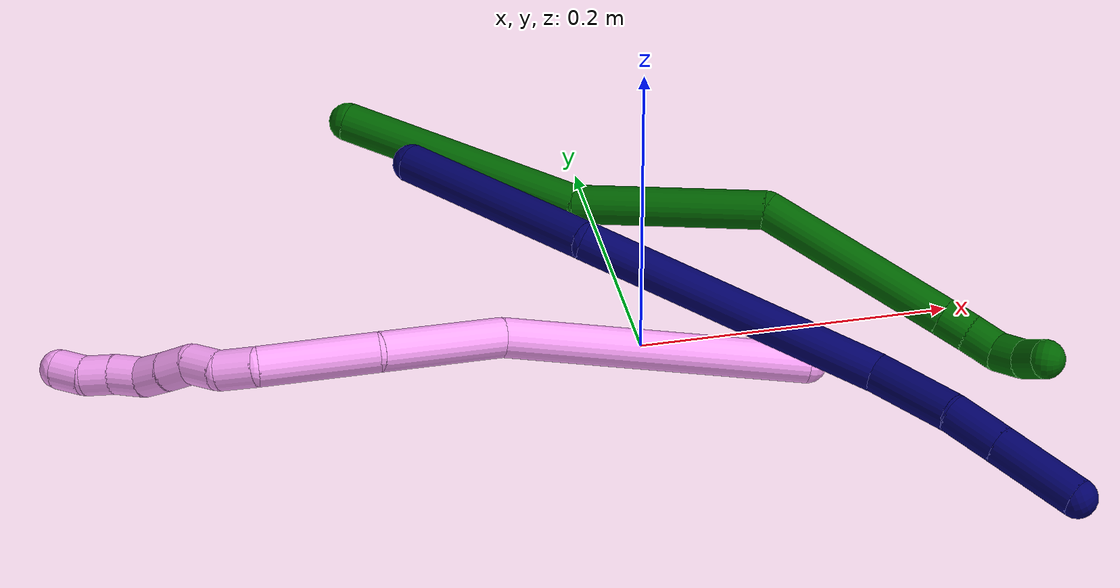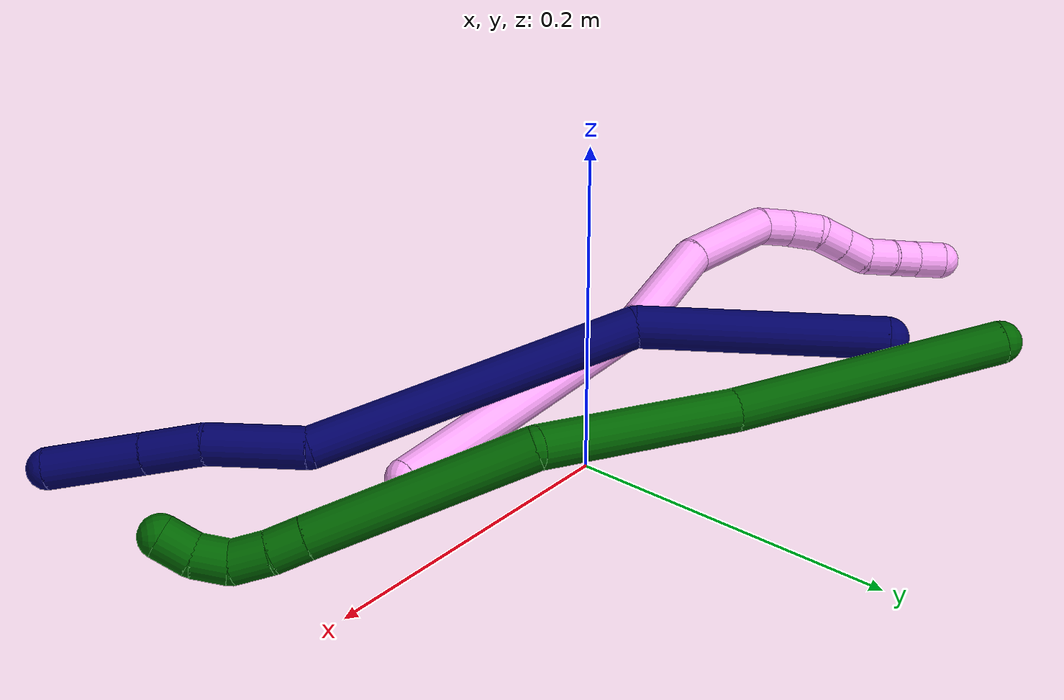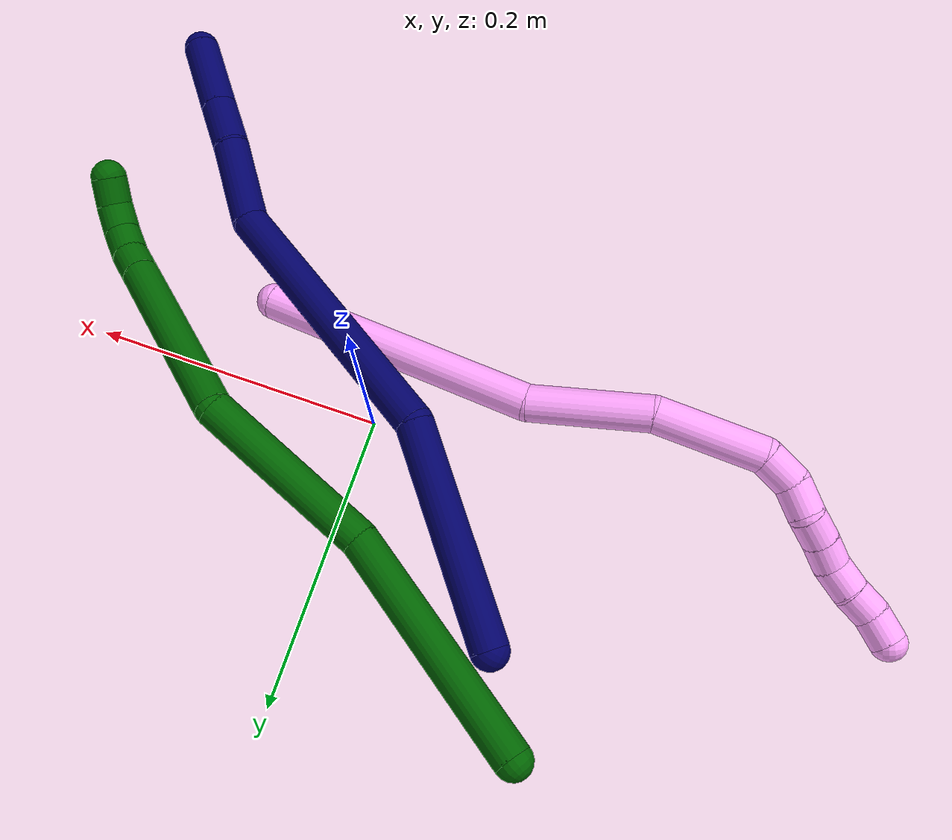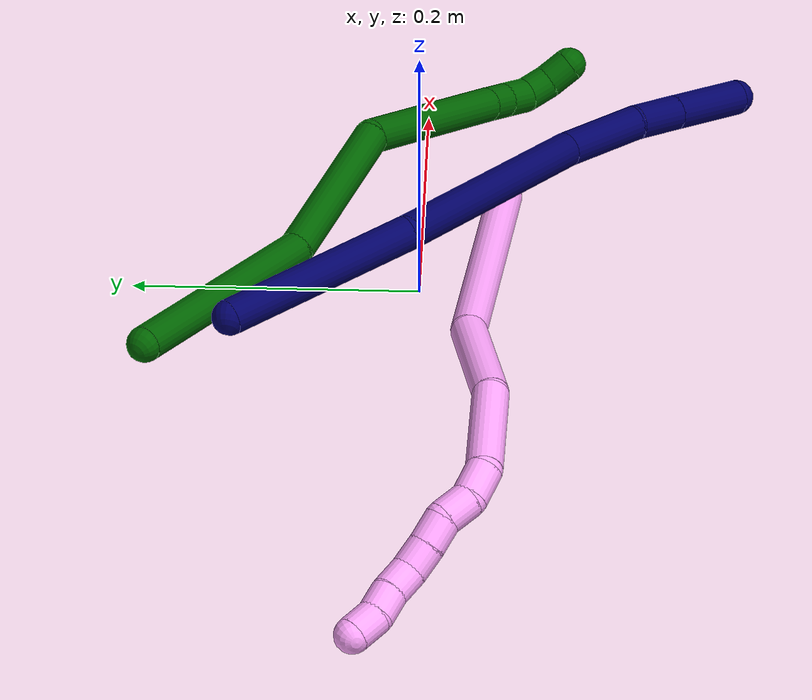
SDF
<sdf version="1.7">
 <world name="default">
  <model name="photoneo_s_sensor">
   <static>1</static>
   <pose>0 0 2 1.57079 1.57079 3.14159</pose>
   <link name="link">
    <inertial><mass>0.1</mass></inertial>
    <sensor name="sensor" type="depth">
     <update_rate>30</update_rate>
     <camera>
      <horizontal_fov>1.22</horizontal_fov>
      <image><width>1920</width><height>1200</height><format>B8G8R8</format></image>
      <clip><near>0.1</near><far>4</far></clip>
      <depth_camera><output>points</output></depth_camera>
     </camera>
     <plugin name="camera_plugin" filename="libgazebo_ros_depth_camera.so">
      <baseline>0.2</baseline>
      <alwaysOn>1</alwaysOn>
      <updateRate>0.0</updateRate>
      <cameraName>camera_ir</cameraName>
      <imageTopicName>/camera/color/image_raw</imageTopicName>
      <cameraInfoTopicName>/camera/color/camera_info</cameraInfoTopicName>
      <depthImageTopicName>/camera/depth/image_raw</depthImageTopicName>
      <depthImageCameraInfoTopicName>/camera/depth/camera_info</depthImageCameraInfoTopicName>
      <pointCloudTopicName>/camera/depth/points</pointCloudTopicName>
      <frameName>fr_optical</frameName>
      <pointCloudCutoff>0.1</pointCloudCutoff>
      <pointCloudCutoffMax>2.0</pointCloudCutoffMax>
      <distortionK1>0</distortionK1>
      <distortionK2>0</distortionK2>
      <distortionK3>0</distortionK3>
      <distortionT1>0</distortionT1>
      <distortionT2>0</distortionT2>
      <CxPrime>0</CxPrime>
      <Cx>0</Cx>
      <Cy>0</Cy>
      <focalLength>0</focalLength>
      <hackBaseline>0</hackBaseline>
     </plugin>
    </sensor>
   </link>
  </model>
  <model name="bin">
   <static>1</static>
   <link name="bottom">
    <collision name="collision-bottom">
     <pose>0 0 -0.01 0 -0 0</pose>
     <geometry><box><size>0.8 0.6 0.02</size></box></geometry>
     <surface>
      <friction><ode><mu>100</mu><mu2>100</mu2></ode></friction>
      <contact><collide_bitmask>65535</collide_bitmask></contact>
     </surface>
    </collision>
   </link>
   <link name="west_wall">
    <collision name="collision-west_wall">
     <pose>-0.41 0 0.1 0 -0 0</pose>
     <geometry><box><size>0.02 0.6 0.2</size></box></geometry>
     <surface>
      <friction><ode><mu>100</mu><mu2>100</mu2></ode></friction>
      <contact><collide_bitmask>65535</collide_bitmask></contact>
     </surface>
    </collision>
   </link>
   <link name="east_wall">
    <collision name="collision-east_wall">
     <pose>0.41 0 0.1 0 -0 0</pose>
     <geometry><box><size>0.02 0.6 0.2</size></box></geometry>
     <surface>
      <friction><ode><mu>100</mu><mu2>100</mu2></ode></friction>
      <contact><collide_bitmask>65535</collide_bitmask></contact>
     </surface>
    </collision>
   </link>
   <link name="south_wall">
    <collision name="collision-south_wall">
     <pose>0 -0.31 0.1 0 -0 0</pose>
     <geometry><box><size>0.8 0.02 0.2</size></box></geometry>
     <surface>
      <friction><ode><mu>100</mu><mu2>100</mu2></ode></friction>
      <contact><collide_bitmask>65535</collide_bitmask></contact>
     </surface>
    </collision>
   </link>
   <link name="north_wall">
    <collision name="collision-north_wall">
     <pose>0 0.31 0.1 0 -0 0</pose>
     <geometry><box><size>0.8 0.02 0.2</size></box></geometry>
     <surface>
      <friction><ode><mu>100</mu><mu2>100</mu2></ode></friction>
      <contact><collide_bitmask>65535</collide_bitmask></contact>
     </surface>
    </collision>
   </link>
  </model>
  <model name="4">
   <static>0</static>
   <link name="4">
    <collision name="collision-cylinder-e_1_1_4">
     <pose>-0.022563 0.03077 0.089066 -0.332634 -0.235016 0.039629</pose>
     <geometry><cylinder><radius>0.0125</radius><length>0.193789</length></cylinder></geometry>
     <surface>
      <friction><ode><mu>1.16</mu><mu2>1.16</mu2><slip1>0</slip1><slip2>0</slip2></ode></friction>
      <contact><ode><kp>1e+06</kp><kd>1</kd><max_vel>0</max_vel><min_depth>0.001</min_depth></ode></contact>
     </surface>
    </collision>
    <visual name="visual-cylinder-e_1_1_4">
     <pose>-0.022563 0.03077 0.089066 -0.332634 -0.235016 0.039629</pose>
     <geometry><cylinder><radius>0.0125</radius><length>0.193789</length></cylinder></geometry>
     <material><ambient>1 0.65098 0.996078 1</ambient></material>
    </visual>
    <collision name="collision-cylinder-e_2_4_5">
     <pose>-0.051186 0.062762 0.218689 -0.030149 -0.148277 0.002239</pose>
     <geometry><cylinder><radius>0.0125</radius><length>0.082052</length></cylinder></geometry>
     <surface>
      <friction><ode><mu>1.16</mu><mu2>1.16</mu2><slip1>0</slip1><slip2>0</slip2></ode></friction>
      <contact><ode><kp>1e+06</kp><kd>1</kd><max_vel>0</max_vel><min_depth>0.001</min_depth></ode></contact>
     </surface>
    </collision>
    <visual name="visual-cylinder-e_2_4_5">
     <pose>-0.051186 0.062762 0.218689 -0.030149 -0.148277 0.002239</pose>
     <geometry><cylinder><radius>0.0125</radius><length>0.082052</length></cylinder></geometry>
     <material><ambient>1 0.65098 0.996078 1</ambient></material>
    </visual>
    <collision name="collision-cylinder-e_3_5_6">
     <pose>-0.071695 0.070557 0.292918 -0.192753 -0.398569 0.039045</pose>
     <geometry><cylinder><radius>0.0125</radius><length>0.074451</length></cylinder></geometry>
     <surface>
      <friction><ode><mu>1.16</mu><mu2>1.16</mu2><slip1>0</slip1><slip2>0</slip2></ode></friction>
      <contact><ode><kp>1e+06</kp><kd>1</kd><max_vel>0</max_vel><min_depth>0.001</min_depth></ode></contact>
     </surface>
    </collision>
    <visual name="visual-cylinder-e_3_5_6">
     <pose>-0.071695 0.070557 0.292918 -0.192753 -0.398569 0.039045</pose>
     <geometry><cylinder><radius>0.0125</radius><length>0.074451</length></cylinder></geometry>
     <material><ambient>1 0.65098 0.996078 1</ambient></material>
    </visual>
    <collision name="collision-cylinder-e_4_6_7">
     <pose>-0.094412 0.081805 0.334607 -0.52804 -0.727923 0.205232</pose>
     <geometry><cylinder><radius>0.0125</radius><length>0.024862</length></cylinder></geometry>
     <surface>
      <friction><ode><mu>1.16</mu><mu2>1.16</mu2><slip1>0</slip1><slip2>0</slip2></ode></friction>
      <contact><ode><kp>1e+06</kp><kd>1</kd><max_vel>0</max_vel><min_depth>0.001</min_depth></ode></contact>
     </surface>
    </collision>
    <visual name="visual-cylinder-e_4_6_7">
     <pose>-0.094412 0.081805 0.334607 -0.52804 -0.727923 0.205232</pose>
     <geometry><cylinder><radius>0.0125</radius><length>0.024862</length></cylinder></geometry>
     <material><ambient>1 0.65098 0.996078 1</ambient></material>
    </visual>
    <collision name="collision-cylinder-e_5_7_8">
     <pose>-0.109801 0.094091 0.346689 -1.08006 -0.689821 0.424266</pose>
     <geometry><cylinder><radius>0.0125</radius><length>0.02237</length></cylinder></geometry>
     <surface>
      <friction><ode><mu>1.16</mu><mu2>1.16</mu2><slip1>0</slip1><slip2>0</slip2></ode></friction>
      <contact><ode><kp>1e+06</kp><kd>1</kd><max_vel>0</max_vel><min_depth>0.001</min_depth></ode></contact>
     </surface>
    </collision>
    <visual name="visual-cylinder-e_5_7_8">
     <pose>-0.109801 0.094091 0.346689 -1.08006 -0.689821 0.424266</pose>
     <geometry><cylinder><radius>0.0125</radius><length>0.02237</length></cylinder></geometry>
     <material><ambient>1 0.65098 0.996078 1</ambient></material>
    </visual>
    <collision name="collision-cylinder-e_6_8_9">
     <pose>-0.125823 0.105212 0.354538 -0.748212 -1.0454 0.444903</pose>
     <geometry><cylinder><radius>0.0125</radius><length>0.020583</length></cylinder></geometry>
     <surface>
      <friction><ode><mu>1.16</mu><mu2>1.16</mu2><slip1>0</slip1><slip2>0</slip2></ode></friction>
      <contact><ode><kp>1e+06</kp><kd>1</kd><max_vel>0</max_vel><min_depth>0.001</min_depth></ode></contact>
     </surface>
    </collision>
    <visual name="visual-cylinder-e_6_8_9">
     <pose>-0.125823 0.105212 0.354538 -0.748212 -1.0454 0.444903</pose>
     <geometry><cylinder><radius>0.0125</radius><length>0.020583</length></cylinder></geometry>
     <material><ambient>1 0.65098 0.996078 1</ambient></material>
    </visual>
    <collision name="collision-cylinder-e_7_9_10">
     <pose>-0.143461 0.112722 0.361517 -0.896582 -1.04077 0.537884</pose>
     <geometry><cylinder><radius>0.0125</radius><length>0.020247</length></cylinder></geometry>
     <surface>
      <friction><ode><mu>1.16</mu><mu2>1.16</mu2><slip1>0</slip1><slip2>0</slip2></ode></friction>
      <contact><ode><kp>1e+06</kp><kd>1</kd><max_vel>0</max_vel><min_depth>0.001</min_depth></ode></contact>
     </surface>
    </collision>
    <visual name="visual-cylinder-e_7_9_10">
     <pose>-0.143461 0.112722 0.361517 -0.896582 -1.04077 0.537884</pose>
     <geometry><cylinder><radius>0.0125</radius><length>0.020247</length></cylinder></geometry>
     <material><ambient>1 0.65098 0.996078 1</ambient></material>
    </visual>
    <collision name="collision-cylinder-e_8_10_11">
     <pose>-0.158757 0.122643 0.370361 -0.809139 -0.675762 0.298653</pose>
     <geometry><cylinder><radius>0.0125</radius><length>0.020982</length></cylinder></geometry>
     <surface>
      <friction><ode><mu>1.16</mu><mu2>1.16</mu2><slip1>0</slip1><slip2>0</slip2></ode></friction>
      <contact><ode><kp>1e+06</kp><kd>1</kd><max_vel>0</max_vel><min_depth>0.001</min_depth></ode></contact>
     </surface>
    </collision>
    <visual name="visual-cylinder-e_8_10_11">
     <pose>-0.158757 0.122643 0.370361 -0.809139 -0.675762 0.298653</pose>
     <geometry><cylinder><radius>0.0125</radius><length>0.020982</length></cylinder></geometry>
     <material><ambient>1 0.65098 0.996078 1</ambient></material>
    </visual>
    <collision name="collision-cylinder-e_9_11_12">
     <pose>-0.171914 0.132799 0.382228 -0.597618 -0.719813 0.230792</pose>
     <geometry><cylinder><radius>0.0125</radius><length>0.020007</length></cylinder></geometry>
     <surface>
      <friction><ode><mu>1.16</mu><mu2>1.16</mu2><slip1>0</slip1><slip2>0</slip2></ode></friction>
      <contact><ode><kp>1e+06</kp><kd>1</kd><max_vel>0</max_vel><min_depth>0.001</min_depth></ode></contact>
     </surface>
    </collision>
    <visual name="visual-cylinder-e_9_11_12">
     <pose>-0.171914 0.132799 0.382228 -0.597618 -0.719813 0.230792</pose>
     <geometry><cylinder><radius>0.0125</radius><length>0.020007</length></cylinder></geometry>
     <material><ambient>1 0.65098 0.996078 1</ambient></material>
    </visual>
    <collision name="collision-cylinder-e_10_12_2">
     <pose>-0.184498 0.143918 0.393283 -0.958496 -0.618528 0.329074</pose>
     <geometry><cylinder><radius>0.0125</radius><length>0.020657</length></cylinder></geometry>
     <surface>
      <friction><ode><mu>1.16</mu><mu2>1.16</mu2><slip1>0</slip1><slip2>0</slip2></ode></friction>
      <contact><ode><kp>1e+06</kp><kd>1</kd><max_vel>0</max_vel><min_depth>0.001</min_depth></ode></contact>
     </surface>
    </collision>
    <visual name="visual-cylinder-e_10_12_2">
     <pose>-0.184498 0.143918 0.393283 -0.958496 -0.618528 0.329074</pose>
     <geometry><cylinder><radius>0.0125</radius><length>0.020657</length></cylinder></geometry>
     <material><ambient>1 0.65098 0.996078 1</ambient></material>
    </visual>
    <collision name="collision-sphere-2">
     <pose>-0.190487 0.150805 0.398119 0 -0 0</pose>
     <geometry><sphere><radius>0.0125</radius></sphere></geometry>
     <surface>
      <friction><ode><mu>1.16</mu><mu2>1.16</mu2><slip1>0</slip1><slip2>0</slip2></ode></friction>
      <contact><ode><kp>1e+06</kp><kd>1</kd><max_vel>0</max_vel><min_depth>0.001</min_depth></ode></contact>
     </surface>
    </collision>
    <visual name="visual-sphere-2">
     <pose>-0.190487 0.150805 0.398119 0 -0 0</pose>
     <geometry><sphere><radius>0.0125</radius></sphere></geometry>
     <material><ambient>1 0.65098 0.996078 1</ambient></material>
    </visual>
    <collision name="collision-sphere-12">
     <pose>-0.178509 0.137032 0.388446 0 -0 0</pose>
     <geometry><sphere><radius>0.0125</radius></sphere></geometry>
     <surface>
      <friction><ode><mu>1.16</mu><mu2>1.16</mu2><slip1>0</slip1><slip2>0</slip2></ode></friction>
      <contact><ode><kp>1e+06</kp><kd>1</kd><max_vel>0</max_vel><min_depth>0.001</min_depth></ode></contact>
     </surface>
    </collision>
    <visual name="visual-sphere-12">
     <pose>-0.178509 0.137032 0.388446 0 -0 0</pose>
     <geometry><sphere><radius>0.0125</radius></sphere></geometry>
     <material><ambient>1 0.65098 0.996078 1</ambient></material>
    </visual>
    <collision name="collision-sphere-11">
     <pose>-0.165319 0.128567 0.376009 0 -0 0</pose>
     <geometry><sphere><radius>0.0125</radius></sphere></geometry>
     <surface>
      <friction><ode><mu>1.16</mu><mu2>1.16</mu2><slip1>0</slip1><slip2>0</slip2></ode></friction>
      <contact><ode><kp>1e+06</kp><kd>1</kd><max_vel>0</max_vel><min_depth>0.001</min_depth></ode></contact>
     </surface>
    </collision>
    <visual name="visual-sphere-11">
     <pose>-0.165319 0.128567 0.376009 0 -0 0</pose>
     <geometry><sphere><radius>0.0125</radius></sphere></geometry>
     <material><ambient>1 0.65098 0.996078 1</ambient></material>
    </visual>
    <collision name="collision-sphere-10">
     <pose>-0.152195 0.11672 0.364712 0 -0 0</pose>
     <geometry><sphere><radius>0.0125</radius></sphere></geometry>
     <surface>
      <friction><ode><mu>1.16</mu><mu2>1.16</mu2><slip1>0</slip1><slip2>0</slip2></ode></friction>
      <contact><ode><kp>1e+06</kp><kd>1</kd><max_vel>0</max_vel><min_depth>0.001</min_depth></ode></contact>
     </surface>
    </collision>
    <visual name="visual-sphere-10">
     <pose>-0.152195 0.11672 0.364712 0 -0 0</pose>
     <geometry><sphere><radius>0.0125</radius></sphere></geometry>
     <material><ambient>1 0.65098 0.996078 1</ambient></material>
    </visual>
    <collision name="collision-sphere-9">
     <pose>-0.134726 0.108723 0.358322 0 -0 0</pose>
     <geometry><sphere><radius>0.0125</radius></sphere></geometry>
     <surface>
      <friction><ode><mu>1.16</mu><mu2>1.16</mu2><slip1>0</slip1><slip2>0</slip2></ode></friction>
      <contact><ode><kp>1e+06</kp><kd>1</kd><max_vel>0</max_vel><min_depth>0.001</min_depth></ode></contact>
     </surface>
    </collision>
    <visual name="visual-sphere-9">
     <pose>-0.134726 0.108723 0.358322 0 -0 0</pose>
     <geometry><sphere><radius>0.0125</radius></sphere></geometry>
     <material><ambient>1 0.65098 0.996078 1</ambient></material>
    </visual>
    <collision name="collision-sphere-4">
     <pose>-0.045125 0.061539 0.178131 0 -0 0</pose>
     <geometry><sphere><radius>0.0125</radius></sphere></geometry>
     <surface>
      <friction><ode><mu>1.16</mu><mu2>1.16</mu2><slip1>0</slip1><slip2>0</slip2></ode></friction>
      <contact><ode><kp>1e+06</kp><kd>1</kd><max_vel>0</max_vel><min_depth>0.001</min_depth></ode></contact>
     </surface>
    </collision>
    <visual name="visual-sphere-4">
     <pose>-0.045125 0.061539 0.178131 0 -0 0</pose>
     <geometry><sphere><radius>0.0125</radius></sphere></geometry>
     <material><ambient>1 0.65098 0.996078 1</ambient></material>
    </visual>
    <collision name="collision-sphere-1">
     <geometry><sphere><radius>0.0125</radius></sphere></geometry>
     <surface>
      <friction><ode><mu>1.16</mu><mu2>1.16</mu2><slip1>0</slip1><slip2>0</slip2></ode></friction>
      <contact><ode><kp>1e+06</kp><kd>1</kd><max_vel>0</max_vel><min_depth>0.001</min_depth></ode></contact>
     </surface>
    </collision>
    <visual name="visual-sphere-1">
     <geometry><sphere><radius>0.0125</radius></sphere></geometry>
     <material><ambient>1 0.65098 0.996078 1</ambient></material>
    </visual>
    <collision name="collision-sphere-8">
     <pose>-0.116919 0.1017 0.350755 0 -0 0</pose>
     <geometry><sphere><radius>0.0125</radius></sphere></geometry>
     <surface>
      <friction><ode><mu>1.16</mu><mu2>1.16</mu2><slip1>0</slip1><slip2>0</slip2></ode></friction>
      <contact><ode><kp>1e+06</kp><kd>1</kd><max_vel>0</max_vel><min_depth>0.001</min_depth></ode></contact>
     </surface>
    </collision>
    <visual name="visual-sphere-8">
     <pose>-0.116919 0.1017 0.350755 0 -0 0</pose>
     <geometry><sphere><radius>0.0125</radius></sphere></geometry>
     <material><ambient>1 0.65098 0.996078 1</ambient></material>
    </visual>
    <collision name="collision-sphere-5">
     <pose>-0.057247 0.063985 0.259246 0 -0 0</pose>
     <geometry><sphere><radius>0.0125</radius></sphere></geometry>
     <surface>
      <friction><ode><mu>1.16</mu><mu2>1.16</mu2><slip1>0</slip1><slip2>0</slip2></ode></friction>
      <contact><ode><kp>1e+06</kp><kd>1</kd><max_vel>0</max_vel><min_depth>0.001</min_depth></ode></contact>
     </surface>
    </collision>
    <visual name="visual-sphere-5">
     <pose>-0.057247 0.063985 0.259246 0 -0 0</pose>
     <geometry><sphere><radius>0.0125</radius></sphere></geometry>
     <material><ambient>1 0.65098 0.996078 1</ambient></material>
    </visual>
    <collision name="collision-sphere-6">
     <pose>-0.086142 0.077129 0.326591 0 -0 0</pose>
     <geometry><sphere><radius>0.0125</radius></sphere></geometry>
     <surface>
      <friction><ode><mu>1.16</mu><mu2>1.16</mu2><slip1>0</slip1><slip2>0</slip2></ode></friction>
      <contact><ode><kp>1e+06</kp><kd>1</kd><max_vel>0</max_vel><min_depth>0.001</min_depth></ode></contact>
     </surface>
    </collision>
    <visual name="visual-sphere-6">
     <pose>-0.086142 0.077129 0.326591 0 -0 0</pose>
     <geometry><sphere><radius>0.0125</radius></sphere></geometry>
     <material><ambient>1 0.65098 0.996078 1</ambient></material>
    </visual>
    <collision name="collision-sphere-7">
     <pose>-0.102683 0.086481 0.342623 0 -0 0</pose>
     <geometry><sphere><radius>0.0125</radius></sphere></geometry>
     <surface>
      <friction><ode><mu>1.16</mu><mu2>1.16</mu2><slip1>0</slip1><slip2>0</slip2></ode></friction>
      <contact><ode><kp>1e+06</kp><kd>1</kd><max_vel>0</max_vel><min_depth>0.001</min_depth></ode></contact>
     </surface>
    </collision>
    <visual name="visual-sphere-7">
     <pose>-0.102683 0.086481 0.342623 0 -0 0</pose>
     <geometry><sphere><radius>0.0125</radius></sphere></geometry>
     <material><ambient>1 0.65098 0.996078 1</ambient></material>
    </visual>
    <inertial>
     <pose>-0.06958 0.066311 0.222491 0 -0 0</pose>
     <mass>0.5</mass>
     <inertia><ixx>0.0007</ixx><ixy>0</ixy><ixz>0</ixz><iyy>0.000717</iyy><iyz>0</iyz><izz>-5e-06</izz></inertia>
    </inertial>
   </link>
   <pose>0.093559 -0.056959 0.012635 0.984821 -1.06458 -0.749997</pose>
  </model>
  <model name="6">
   <static>0</static>
   <link name="6">
    <collision name="collision-cylinder-e_1_1_4">
     <pose>0.010788 -0.01411 -0.079175 2.96524 0.133348 1.29376</pose>
     <geometry><cylinder><radius>0.0125</radius><length>0.162286</length></cylinder></geometry>
     <surface>
      <friction><ode><mu>1.16</mu><mu2>1.16</mu2><slip1>0</slip1><slip2>0</slip2></ode></friction>
      <contact><ode><kp>1e+06</kp><kd>1</kd><max_vel>0</max_vel><min_depth>0.001</min_depth></ode></contact>
     </surface>
    </collision>
    <visual name="visual-cylinder-e_1_1_4">
     <pose>0.010788 -0.01411 -0.079175 2.96524 0.133348 1.29376</pose>
     <geometry><cylinder><radius>0.0125</radius><length>0.162286</length></cylinder></geometry>
     <material><ambient>0 0.392157 0.003922 1</ambient></material>
    </visual>
    <collision name="collision-cylinder-e_2_4_5">
     <pose>0.011728 -0.031481 -0.219998 3.08873 -0.158196 -2.49774</pose>
     <geometry><cylinder><radius>0.0125</radius><length>0.125027</length></cylinder></geometry>
     <surface>
      <friction><ode><mu>1.16</mu><mu2>1.16</mu2><slip1>0</slip1><slip2>0</slip2></ode></friction>
      <contact><ode><kp>1e+06</kp><kd>1</kd><max_vel>0</max_vel><min_depth>0.001</min_depth></ode></contact>
     </surface>
    </collision>
    <visual name="visual-cylinder-e_2_4_5">
     <pose>0.011728 -0.031481 -0.219998 3.08873 -0.158196 -2.49774</pose>
     <geometry><cylinder><radius>0.0125</radius><length>0.125027</length></cylinder></geometry>
     <material><ambient>0 0.392157 0.003922 1</ambient></material>
    </visual>
    <collision name="collision-cylinder-e_3_5_6">
     <pose>0.018892 -0.05565 -0.341014 2.803 0.263966 1.32068</pose>
     <geometry><cylinder><radius>0.0125</radius><length>0.130404</length></cylinder></geometry>
     <surface>
      <friction><ode><mu>1.16</mu><mu2>1.16</mu2><slip1>0</slip1><slip2>0</slip2></ode></friction>
      <contact><ode><kp>1e+06</kp><kd>1</kd><max_vel>0</max_vel><min_depth>0.001</min_depth></ode></contact>
     </surface>
    </collision>
    <visual name="visual-cylinder-e_3_5_6">
     <pose>0.018892 -0.05565 -0.341014 2.803 0.263966 1.32068</pose>
     <geometry><cylinder><radius>0.0125</radius><length>0.130404</length></cylinder></geometry>
     <material><ambient>0 0.392157 0.003922 1</ambient></material>
    </visual>
    <collision name="collision-cylinder-e_4_6_7">
     <pose>0.038545 -0.079941 -0.409489 2.78584 0.265446 1.27755</pose>
     <geometry><cylinder><radius>0.0125</radius><length>0.020133</length></cylinder></geometry>
     <surface>
      <friction><ode><mu>1.16</mu><mu2>1.16</mu2><slip1>0</slip1><slip2>0</slip2></ode></friction>
      <contact><ode><kp>1e+06</kp><kd>1</kd><max_vel>0</max_vel><min_depth>0.001</min_depth></ode></contact>
     </surface>
    </collision>
    <visual name="visual-cylinder-e_4_6_7">
     <pose>0.038545 -0.079941 -0.409489 2.78584 0.265446 1.27755</pose>
     <geometry><cylinder><radius>0.0125</radius><length>0.020133</length></cylinder></geometry>
     <material><ambient>0 0.392157 0.003922 1</ambient></material>
    </visual>
    <collision name="collision-cylinder-e_5_7_8">
     <pose>0.045051 -0.085773 -0.428569 2.90077 0.359974 1.96794</pose>
     <geometry><cylinder><radius>0.0125</radius><length>0.021947</length></cylinder></geometry>
     <surface>
      <friction><ode><mu>1.16</mu><mu2>1.16</mu2><slip1>0</slip1><slip2>0</slip2></ode></friction>
      <contact><ode><kp>1e+06</kp><kd>1</kd><max_vel>0</max_vel><min_depth>0.001</min_depth></ode></contact>
     </surface>
    </collision>
    <visual name="visual-cylinder-e_5_7_8">
     <pose>0.045051 -0.085773 -0.428569 2.90077 0.359974 1.96794</pose>
     <geometry><cylinder><radius>0.0125</radius><length>0.021947</length></cylinder></geometry>
     <material><ambient>0 0.392157 0.003922 1</ambient></material>
    </visual>
    <collision name="collision-cylinder-e_6_8_9">
     <pose>0.051959 -0.085816 -0.447837 -2.88815 0.306908 -1.76353</pose>
     <geometry><cylinder><radius>0.0125</radius><length>0.020142</length></cylinder></geometry>
     <surface>
      <friction><ode><mu>1.16</mu><mu2>1.16</mu2><slip1>0</slip1><slip2>0</slip2></ode></friction>
      <contact><ode><kp>1e+06</kp><kd>1</kd><max_vel>0</max_vel><min_depth>0.001</min_depth></ode></contact>
     </surface>
    </collision>
    <visual name="visual-cylinder-e_6_8_9">
     <pose>0.051959 -0.085816 -0.447837 -2.88815 0.306908 -1.76353</pose>
     <geometry><cylinder><radius>0.0125</radius><length>0.020142</length></cylinder></geometry>
     <material><ambient>0 0.392157 0.003922 1</ambient></material>
    </visual>
    <collision name="collision-cylinder-e_7_9_2">
     <pose>0.057604 -0.077953 -0.465135 -2.5434 0.262491 -0.80899</pose>
     <geometry><cylinder><radius>0.0125</radius><length>0.02006</length></cylinder></geometry>
     <surface>
      <friction><ode><mu>1.16</mu><mu2>1.16</mu2><slip1>0</slip1><slip2>0</slip2></ode></friction>
      <contact><ode><kp>1e+06</kp><kd>1</kd><max_vel>0</max_vel><min_depth>0.001</min_depth></ode></contact>
     </surface>
    </collision>
    <visual name="visual-cylinder-e_7_9_2">
     <pose>0.057604 -0.077953 -0.465135 -2.5434 0.262491 -0.80899</pose>
     <geometry><cylinder><radius>0.0125</radius><length>0.02006</length></cylinder></geometry>
     <material><ambient>0 0.392157 0.003922 1</ambient></material>
    </visual>
    <collision name="collision-sphere-2">
     <pose>0.060207 -0.072498 -0.47314 0 -0 0</pose>
     <geometry><sphere><radius>0.0125</radius></sphere></geometry>
     <surface>
      <friction><ode><mu>1.16</mu><mu2>1.16</mu2><slip1>0</slip1><slip2>0</slip2></ode></friction>
      <contact><ode><kp>1e+06</kp><kd>1</kd><max_vel>0</max_vel><min_depth>0.001</min_depth></ode></contact>
     </surface>
    </collision>
    <visual name="visual-sphere-2">
     <pose>0.060207 -0.072498 -0.47314 0 -0 0</pose>
     <geometry><sphere><radius>0.0125</radius></sphere></geometry>
     <material><ambient>0 0.392157 0.003922 1</ambient></material>
    </visual>
    <collision name="collision-sphere-9">
     <pose>0.055002 -0.083408 -0.457131 0 -0 0</pose>
     <geometry><sphere><radius>0.0125</radius></sphere></geometry>
     <surface>
      <friction><ode><mu>1.16</mu><mu2>1.16</mu2><slip1>0</slip1><slip2>0</slip2></ode></friction>
      <contact><ode><kp>1e+06</kp><kd>1</kd><max_vel>0</max_vel><min_depth>0.001</min_depth></ode></contact>
     </surface>
    </collision>
    <visual name="visual-sphere-9">
     <pose>0.055002 -0.083408 -0.457131 0 -0 0</pose>
     <geometry><sphere><radius>0.0125</radius></sphere></geometry>
     <material><ambient>0 0.392157 0.003922 1</ambient></material>
    </visual>
    <collision name="collision-sphere-4">
     <pose>0.021576 -0.028219 -0.158351 0 -0 0</pose>
     <geometry><sphere><radius>0.0125</radius></sphere></geometry>
     <surface>
      <friction><ode><mu>1.16</mu><mu2>1.16</mu2><slip1>0</slip1><slip2>0</slip2></ode></friction>
      <contact><ode><kp>1e+06</kp><kd>1</kd><max_vel>0</max_vel><min_depth>0.001</min_depth></ode></contact>
     </surface>
    </collision>
    <visual name="visual-sphere-4">
     <pose>0.021576 -0.028219 -0.158351 0 -0 0</pose>
     <geometry><sphere><radius>0.0125</radius></sphere></geometry>
     <material><ambient>0 0.392157 0.003922 1</ambient></material>
    </visual>
    <collision name="collision-sphere-1">
     <geometry><sphere><radius>0.0125</radius></sphere></geometry>
     <surface>
      <friction><ode><mu>1.16</mu><mu2>1.16</mu2><slip1>0</slip1><slip2>0</slip2></ode></friction>
      <contact><ode><kp>1e+06</kp><kd>1</kd><max_vel>0</max_vel><min_depth>0.001</min_depth></ode></contact>
     </surface>
    </collision>
    <visual name="visual-sphere-1">
     <geometry><sphere><radius>0.0125</radius></sphere></geometry>
     <material><ambient>0 0.392157 0.003922 1</ambient></material>
    </visual>
    <collision name="collision-sphere-8">
     <pose>0.048917 -0.088223 -0.438543 0 -0 0</pose>
     <geometry><sphere><radius>0.0125</radius></sphere></geometry>
     <surface>
      <friction><ode><mu>1.16</mu><mu2>1.16</mu2><slip1>0</slip1><slip2>0</slip2></ode></friction>
      <contact><ode><kp>1e+06</kp><kd>1</kd><max_vel>0</max_vel><min_depth>0.001</min_depth></ode></contact>
     </surface>
    </collision>
    <visual name="visual-sphere-8">
     <pose>0.048917 -0.088223 -0.438543 0 -0 0</pose>
     <geometry><sphere><radius>0.0125</radius></sphere></geometry>
     <material><ambient>0 0.392157 0.003922 1</ambient></material>
    </visual>
    <collision name="collision-sphere-5">
     <pose>0.00188 -0.034743 -0.281644 0 -0 0</pose>
     <geometry><sphere><radius>0.0125</radius></sphere></geometry>
     <surface>
      <friction><ode><mu>1.16</mu><mu2>1.16</mu2><slip1>0</slip1><slip2>0</slip2></ode></friction>
      <contact><ode><kp>1e+06</kp><kd>1</kd><max_vel>0</max_vel><min_depth>0.001</min_depth></ode></contact>
     </surface>
    </collision>
    <visual name="visual-sphere-5">
     <pose>0.00188 -0.034743 -0.281644 0 -0 0</pose>
     <geometry><sphere><radius>0.0125</radius></sphere></geometry>
     <material><ambient>0 0.392157 0.003922 1</ambient></material>
    </visual>
    <collision name="collision-sphere-6">
     <pose>0.035904 -0.076557 -0.400384 0 -0 0</pose>
     <geometry><sphere><radius>0.0125</radius></sphere></geometry>
     <surface>
      <friction><ode><mu>1.16</mu><mu2>1.16</mu2><slip1>0</slip1><slip2>0</slip2></ode></friction>
      <contact><ode><kp>1e+06</kp><kd>1</kd><max_vel>0</max_vel><min_depth>0.001</min_depth></ode></contact>
     </surface>
    </collision>
    <visual name="visual-sphere-6">
     <pose>0.035904 -0.076557 -0.400384 0 -0 0</pose>
     <geometry><sphere><radius>0.0125</radius></sphere></geometry>
     <material><ambient>0 0.392157 0.003922 1</ambient></material>
    </visual>
    <collision name="collision-sphere-7">
     <pose>0.041186 -0.083324 -0.418595 0 -0 0</pose>
     <geometry><sphere><radius>0.0125</radius></sphere></geometry>
     <surface>
      <friction><ode><mu>1.16</mu><mu2>1.16</mu2><slip1>0</slip1><slip2>0</slip2></ode></friction>
      <contact><ode><kp>1e+06</kp><kd>1</kd><max_vel>0</max_vel><min_depth>0.001</min_depth></ode></contact>
     </surface>
    </collision>
    <visual name="visual-sphere-7">
     <pose>0.041186 -0.083324 -0.418595 0 -0 0</pose>
     <geometry><sphere><radius>0.0125</radius></sphere></geometry>
     <material><ambient>0 0.392157 0.003922 1</ambient></material>
    </visual>
    <inertial>
     <pose>0.019295 -0.040534 -0.241651 0 -0 0</pose>
     <mass>0.5</mass>
     <inertia>
      <ixx>0.000441</ixx>
      <ixy>0</ixy>
      <ixz>0</ixz>
      <iyy>0.000436</iyy>
      <iyz>0</iyz>
      <izz>2.2e-05</izz>
     </inertia>
    </inertial>
   </link>
   <pose>-0.156461 0.177038 0.078251 1.65283 0.354972 -2.09506</pose>
  </model>
  <model name="7">
   <static>0</static>
   <link name="7">
    <collision name="collision-cylinder-e_1_1_4">
     <pose>0.053753 -0.01195 0.047736 0.2453 0.829498 0.108442</pose>
     <geometry><cylinder><radius>0.0125</radius><length>0.145752</length></cylinder></geometry>
     <surface>
      <friction><ode><mu>1.16</mu><mu2>1.16</mu2><slip1>0</slip1><slip2>0</slip2></ode></friction>
      <contact><ode><kp>1e+06</kp><kd>1</kd><max_vel>0</max_vel><min_depth>0.001</min_depth></ode></contact>
     </surface>
    </collision>
    <visual name="visual-cylinder-e_1_1_4">
     <pose>0.053753 -0.01195 0.047736 0.2453 0.829498 0.108442</pose>
     <geometry><cylinder><radius>0.0125</radius><length>0.145752</length></cylinder></geometry>
     <material><ambient>0.003922 0 0.403922 1</ambient></material>
    </visual>
    <collision name="collision-cylinder-e_2_4_5">
     <pose>0.174112 0.001194 0.165635 -0.343484 0.729408 -0.132248</pose>
     <geometry><cylinder><radius>0.0125</radius><length>0.199889</length></cylinder></geometry>
     <surface>
      <friction><ode><mu>1.16</mu><mu2>1.16</mu2><slip1>0</slip1><slip2>0</slip2></ode></friction>
      <contact><ode><kp>1e+06</kp><kd>1</kd><max_vel>0</max_vel><min_depth>0.001</min_depth></ode></contact>
     </surface>
    </collision>
    <visual name="visual-cylinder-e_2_4_5">
     <pose>0.174112 0.001194 0.165635 -0.343484 0.729408 -0.132248</pose>
     <geometry><cylinder><radius>0.0125</radius><length>0.199889</length></cylinder></geometry>
     <material><ambient>0.003922 0 0.403922 1</ambient></material>
    </visual>
    <collision name="collision-cylinder-e_3_5_6">
     <pose>0.263966 0.021413 0.254015 0.261515 0.889314 0.125159</pose>
     <geometry><cylinder><radius>0.0125</radius><length>0.059871</length></cylinder></geometry>
     <surface>
      <friction><ode><mu>1.16</mu><mu2>1.16</mu2><slip1>0</slip1><slip2>0</slip2></ode></friction>
      <contact><ode><kp>1e+06</kp><kd>1</kd><max_vel>0</max_vel><min_depth>0.001</min_depth></ode></contact>
     </surface>
    </collision>
    <visual name="visual-cylinder-e_3_5_6">
     <pose>0.263966 0.021413 0.254015 0.261515 0.889314 0.125159</pose>
     <geometry><cylinder><radius>0.0125</radius><length>0.059871</length></cylinder></geometry>
     <material><ambient>0.003922 0 0.403922 1</ambient></material>
    </visual>
    <collision name="collision-cylinder-e_4_6_7">
     <pose>0.302128 0.01686 0.282366 -0.031865 0.973673 -0.016868</pose>
     <geometry><cylinder><radius>0.0125</radius><length>0.036068</length></cylinder></geometry>
     <surface>
      <friction><ode><mu>1.16</mu><mu2>1.16</mu2><slip1>0</slip1><slip2>0</slip2></ode></friction>
      <contact><ode><kp>1e+06</kp><kd>1</kd><max_vel>0</max_vel><min_depth>0.001</min_depth></ode></contact>
     </surface>
    </collision>
    <visual name="visual-cylinder-e_4_6_7">
     <pose>0.302128 0.01686 0.282366 -0.031865 0.973673 -0.016868</pose>
     <geometry><cylinder><radius>0.0125</radius><length>0.036068</length></cylinder></geometry>
     <material><ambient>0.003922 0 0.403922 1</ambient></material>
    </visual>
    <collision name="collision-cylinder-e_5_7_2">
     <pose>0.34129 0.017613 0.308781 -0.026373 0.979349 -0.014057</pose>
     <geometry><cylinder><radius>0.0125</radius><length>0.058421</length></cylinder></geometry>
     <surface>
      <friction><ode><mu>1.16</mu><mu2>1.16</mu2><slip1>0</slip1><slip2>0</slip2></ode></friction>
      <contact><ode><kp>1e+06</kp><kd>1</kd><max_vel>0</max_vel><min_depth>0.001</min_depth></ode></contact>
     </surface>
    </collision>
    <visual name="visual-cylinder-e_5_7_2">
     <pose>0.34129 0.017613 0.308781 -0.026373 0.979349 -0.014057</pose>
     <geometry><cylinder><radius>0.0125</radius><length>0.058421</length></cylinder></geometry>
     <material><ambient>0.003922 0 0.403922 1</ambient></material>
    </visual>
    <collision name="collision-sphere-2">
     <pose>0.365539 0.018042 0.325062 0 -0 0</pose>
     <geometry><sphere><radius>0.0125</radius></sphere></geometry>
     <surface>
      <friction><ode><mu>1.16</mu><mu2>1.16</mu2><slip1>0</slip1><slip2>0</slip2></ode></friction>
      <contact><ode><kp>1e+06</kp><kd>1</kd><max_vel>0</max_vel><min_depth>0.001</min_depth></ode></contact>
     </surface>
    </collision>
    <visual name="visual-sphere-2">
     <pose>0.365539 0.018042 0.325062 0 -0 0</pose>
     <geometry><sphere><radius>0.0125</radius></sphere></geometry>
     <material><ambient>0.003922 0 0.403922 1</ambient></material>
    </visual>
    <collision name="collision-sphere-7">
     <pose>0.317042 0.017183 0.2925 0 -0 0</pose>
     <geometry><sphere><radius>0.0125</radius></sphere></geometry>
     <surface>
      <friction><ode><mu>1.16</mu><mu2>1.16</mu2><slip1>0</slip1><slip2>0</slip2></ode></friction>
      <contact><ode><kp>1e+06</kp><kd>1</kd><max_vel>0</max_vel><min_depth>0.001</min_depth></ode></contact>
     </surface>
    </collision>
    <visual name="visual-sphere-7">
     <pose>0.317042 0.017183 0.2925 0 -0 0</pose>
     <geometry><sphere><radius>0.0125</radius></sphere></geometry>
     <material><ambient>0.003922 0 0.403922 1</ambient></material>
    </visual>
    <collision name="collision-sphere-6">
     <pose>0.287215 0.016537 0.272231 0 -0 0</pose>
     <geometry><sphere><radius>0.0125</radius></sphere></geometry>
     <surface>
      <friction><ode><mu>1.16</mu><mu2>1.16</mu2><slip1>0</slip1><slip2>0</slip2></ode></friction>
      <contact><ode><kp>1e+06</kp><kd>1</kd><max_vel>0</max_vel><min_depth>0.001</min_depth></ode></contact>
     </surface>
    </collision>
    <visual name="visual-sphere-6">
     <pose>0.287215 0.016537 0.272231 0 -0 0</pose>
     <geometry><sphere><radius>0.0125</radius></sphere></geometry>
     <material><ambient>0.003922 0 0.403922 1</ambient></material>
    </visual>
    <collision name="collision-sphere-5">
     <pose>0.240717 0.026288 0.235798 0 -0 0</pose>
     <geometry><sphere><radius>0.0125</radius></sphere></geometry>
     <surface>
      <friction><ode><mu>1.16</mu><mu2>1.16</mu2><slip1>0</slip1><slip2>0</slip2></ode></friction>
      <contact><ode><kp>1e+06</kp><kd>1</kd><max_vel>0</max_vel><min_depth>0.001</min_depth></ode></contact>
     </surface>
    </collision>
    <visual name="visual-sphere-5">
     <pose>0.240717 0.026288 0.235798 0 -0 0</pose>
     <geometry><sphere><radius>0.0125</radius></sphere></geometry>
     <material><ambient>0.003922 0 0.403922 1</ambient></material>
    </visual>
    <collision name="collision-sphere-1">
     <geometry><sphere><radius>0.0125</radius></sphere></geometry>
     <surface>
      <friction><ode><mu>1.16</mu><mu2>1.16</mu2><slip1>0</slip1><slip2>0</slip2></ode></friction>
      <contact><ode><kp>1e+06</kp><kd>1</kd><max_vel>0</max_vel><min_depth>0.001</min_depth></ode></contact>
     </surface>
    </collision>
    <visual name="visual-sphere-1">
     <geometry><sphere><radius>0.0125</radius></sphere></geometry>
     <material><ambient>0.003922 0 0.403922 1</ambient></material>
    </visual>
    <collision name="collision-sphere-4">
     <pose>0.107506 -0.023901 0.095472 0 -0 0</pose>
     <geometry><sphere><radius>0.0125</radius></sphere></geometry>
     <surface>
      <friction><ode><mu>1.16</mu><mu2>1.16</mu2><slip1>0</slip1><slip2>0</slip2></ode></friction>
      <contact><ode><kp>1e+06</kp><kd>1</kd><max_vel>0</max_vel><min_depth>0.001</min_depth></ode></contact>
     </surface>
    </collision>
    <visual name="visual-sphere-4">
     <pose>0.107506 -0.023901 0.095472 0 -0 0</pose>
     <geometry><sphere><radius>0.0125</radius></sphere></geometry>
     <material><ambient>0.003922 0 0.403922 1</ambient></material>
    </visual>
    <inertial>
     <pose>0.178554 0.002832 0.166996 0 -0 0</pose>
     <mass>0.5</mass>
     <inertia>
      <ixx>0.000684</ixx>
      <ixy>0</ixy>
      <ixz>0</ixz>
      <iyy>0.000908</iyy>
      <iyz>0</iyz>
      <izz>-0.000777</izz>
     </inertia>
    </inertial>
   </link>
   <pose>-0.123884 0.122743 0.076061 -1.11746 0.497361 -1.45923</pose>
  </model>
 </world>
</sdf>
